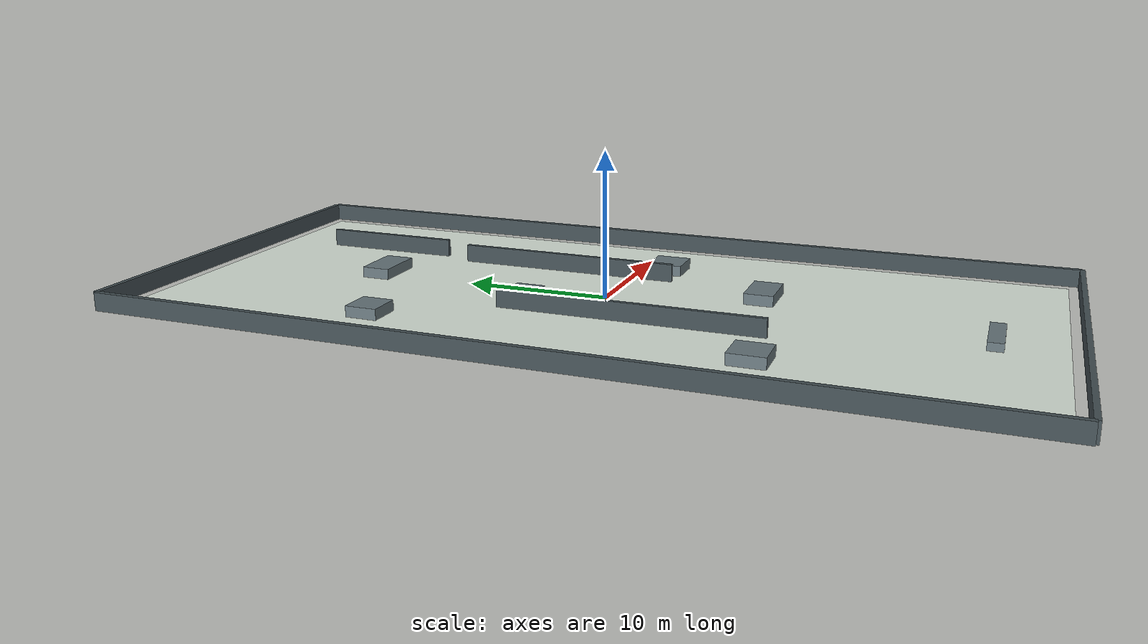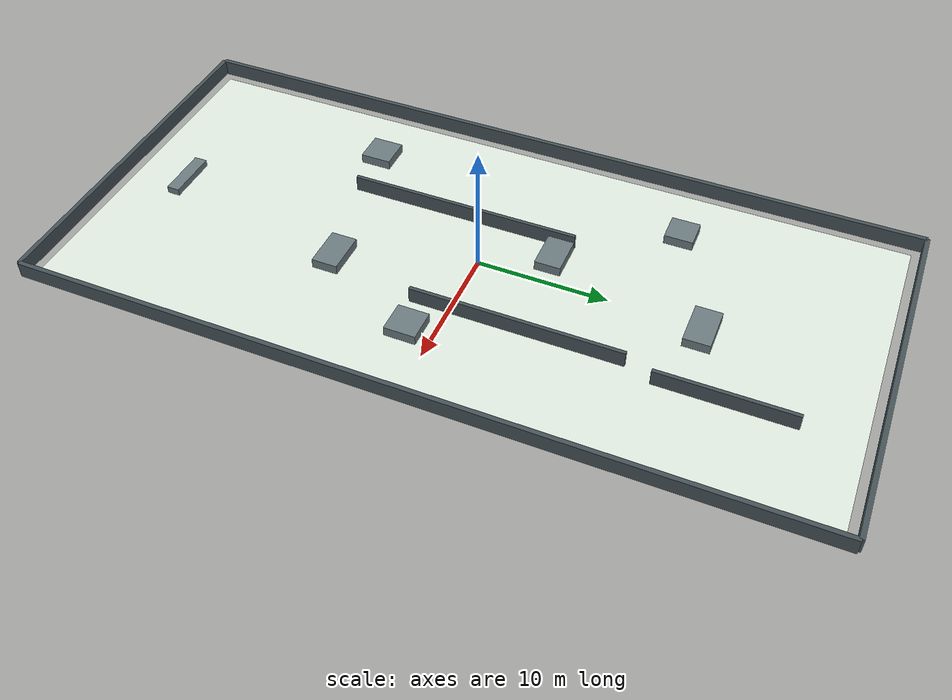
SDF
<?xml version="1.0" ?>
<sdf version="1.6">
  <world name="museum_gallery">
    <gravity>0 0 -9.8</gravity>
    <scene>
      <ambient>0.65 0.65 0.65 1</ambient>
      <background>0.78 0.84 0.88 1</background>
    </scene>
    <include>
      <uri>model://sun</uri>
    </include>
    <model name="museum_gallery_floor">
      <static>true</static>
      <pose>0.000 0.000 -0.025 0 0 0</pose>
      <link name="floor_link">
        <collision name="floor_collision">
          <geometry>
            <box><size>26.400 58.400 0.050</size></box>
          </geometry>
        </collision>
        <visual name="floor_visual">
          <geometry>
            <box><size>26.400 58.400 0.050</size></box>
          </geometry>
          <material><ambient>0.88 0.92 0.88 1</ambient><diffuse>0.88 0.92 0.88 1</diffuse></material>
        </visual>
      </link>
    </model>
    <model name="outer_north">
      <static>true</static>
      <pose>0.000 30.000 0.625 0 0 0</pose>
      <link name="outer_north_link">
        <collision name="outer_north_collision">
          <geometry>
            <box><size>28.000 0.350 1.250</size></box>
          </geometry>
        </collision>
        <visual name="outer_north_visual">
          <geometry>
            <box><size>28.000 0.350 1.250</size></box>
          </geometry>
          <material><ambient>0.27 0.32 0.34 1</ambient><diffuse>0.27 0.32 0.34 1</diffuse></material>
        </visual>
      </link>
    </model>
    <model name="outer_south">
      <static>true</static>
      <pose>0.000 -30.000 0.625 0 0 0</pose>
      <link name="outer_south_link">
        <collision name="outer_south_collision">
          <geometry>
            <box><size>28.000 0.350 1.250</size></box>
          </geometry>
        </collision>
        <visual name="outer_south_visual">
          <geometry>
            <box><size>28.000 0.350 1.250</size></box>
          </geometry>
          <material><ambient>0.27 0.32 0.34 1</ambient><diffuse>0.27 0.32 0.34 1</diffuse></material>
        </visual>
      </link>
    </model>
    <model name="outer_west">
      <static>true</static>
      <pose>-14.000 0.000 0.625 0 0 0</pose>
      <link name="outer_west_link">
        <collision name="outer_west_collision">
          <geometry>
            <box><size>0.350 60.000 1.250</size></box>
          </geometry>
        </collision>
        <visual name="outer_west_visual">
          <geometry>
            <box><size>0.350 60.000 1.250</size></box>
          </geometry>
          <material><ambient>0.27 0.32 0.34 1</ambient><diffuse>0.27 0.32 0.34 1</diffuse></material>
        </visual>
      </link>
    </model>
    <model name="outer_east">
      <static>true</static>
      <pose>14.000 0.000 0.625 0 0 0</pose>
      <link name="outer_east_link">
        <collision name="outer_east_collision">
          <geometry>
            <box><size>0.350 60.000 1.250</size></box>
          </geometry>
        </collision>
        <visual name="outer_east_visual">
          <geometry>
            <box><size>0.350 60.000 1.250</size></box>
          </geometry>
          <material><ambient>0.27 0.32 0.34 1</ambient><diffuse>0.27 0.32 0.34 1</diffuse></material>
        </visual>
      </link>
    </model>
    <model name="museum_partition_left">
      <static>true</static>
      <pose>-4.200 -3.000 0.625 0 0 0</pose>
      <link name="museum_partition_left_link">
        <collision name="museum_partition_left_collision">
          <geometry>
            <box><size>0.280 18.000 1.250</size></box>
          </geometry>
        </collision>
        <visual name="museum_partition_left_visual">
          <geometry>
            <box><size>0.280 18.000 1.250</size></box>
          </geometry>
          <material><ambient>0.27 0.32 0.34 1</ambient><diffuse>0.27 0.32 0.34 1</diffuse></material>
        </visual>
      </link>
    </model>
    <model name="museum_partition_right">
      <static>true</static>
      <pose>5.400 5.000 0.625 0 0 0</pose>
      <link name="museum_partition_right_link">
        <collision name="museum_partition_right_collision">
          <geometry>
            <box><size>0.280 16.000 1.250</size></box>
          </geometry>
        </collision>
        <visual name="museum_partition_right_visual">
          <geometry>
            <box><size>0.280 16.000 1.250</size></box>
          </geometry>
          <material><ambient>0.27 0.32 0.34 1</ambient><diffuse>0.27 0.32 0.34 1</diffuse></material>
        </visual>
      </link>
    </model>
    <model name="museum_vault_wall">
      <static>true</static>
      <pose>6.200 20.000 0.625 0 0 0</pose>
      <link name="museum_vault_wall_link">
        <collision name="museum_vault_wall_collision">
          <geometry>
            <box><size>0.280 10.000 1.250</size></box>
          </geometry>
        </collision>
        <visual name="museum_vault_wall_visual">
          <geometry>
            <box><size>0.280 10.000 1.250</size></box>
          </geometry>
          <material><ambient>0.27 0.32 0.34 1</ambient><diffuse>0.27 0.32 0.34 1</diffuse></material>
        </visual>
      </link>
    </model>
    <model name="museum_case_1">
      <static>true</static>
      <pose>-2.500 5.000 0.375 0 0 0</pose>
      <link name="museum_case_1_link">
        <collision name="museum_case_1_collision">
          <geometry>
            <box><size>3.000 2.000 0.750</size></box>
          </geometry>
        </collision>
        <visual name="museum_case_1_visual">
          <geometry>
            <box><size>3.000 2.000 0.750</size></box>
          </geometry>
          <material><ambient>0.42 0.48 0.50 1</ambient><diffuse>0.42 0.48 0.50 1</diffuse></material>
        </visual>
      </link>
    </model>
    <model name="museum_case_2">
      <static>true</static>
      <pose>3.500 -10.000 0.375 0 0 0</pose>
      <link name="museum_case_2_link">
        <collision name="museum_case_2_collision">
          <geometry>
            <box><size>3.200 2.000 0.750</size></box>
          </geometry>
        </collision>
        <visual name="museum_case_2_visual">
          <geometry>
            <box><size>3.200 2.000 0.750</size></box>
          </geometry>
          <material><ambient>0.42 0.48 0.50 1</ambient><diffuse>0.42 0.48 0.50 1</diffuse></material>
        </visual>
      </link>
    </model>
    <model name="museum_case_3">
      <static>true</static>
      <pose>-8.500 13.000 0.375 0 0 0</pose>
      <link name="museum_case_3_link">
        <collision name="museum_case_3_collision">
          <geometry>
            <box><size>2.200 2.200 0.750</size></box>
          </geometry>
        </collision>
        <visual name="museum_case_3_visual">
          <geometry>
            <box><size>2.200 2.200 0.750</size></box>
          </geometry>
          <material><ambient>0.42 0.48 0.50 1</ambient><diffuse>0.42 0.48 0.50 1</diffuse></material>
        </visual>
      </link>
    </model>
    <model name="museum_case_4">
      <static>true</static>
      <pose>0.500 17.000 0.375 0 0 0</pose>
      <link name="museum_case_4_link">
        <collision name="museum_case_4_collision">
          <geometry>
            <box><size>3.400 2.000 0.750</size></box>
          </geometry>
        </collision>
        <visual name="museum_case_4_visual">
          <geometry>
            <box><size>3.400 2.000 0.750</size></box>
          </geometry>
          <material><ambient>0.42 0.48 0.50 1</ambient><diffuse>0.42 0.48 0.50 1</diffuse></material>
        </visual>
      </link>
    </model>
    <model name="museum_case_5">
      <static>true</static>
      <pose>-8.500 -12.000 0.375 0 0 0</pose>
      <link name="museum_case_5_link">
        <collision name="museum_case_5_collision">
          <geometry>
            <box><size>2.400 2.400 0.750</size></box>
          </geometry>
        </collision>
        <visual name="museum_case_5_visual">
          <geometry>
            <box><size>2.400 2.400 0.750</size></box>
          </geometry>
          <material><ambient>0.42 0.48 0.50 1</ambient><diffuse>0.42 0.48 0.50 1</diffuse></material>
        </visual>
      </link>
    </model>
    <model name="museum_case_6">
      <static>true</static>
      <pose>8.000 -2.000 0.375 0 0 0</pose>
      <link name="museum_case_6_link">
        <collision name="museum_case_6_collision">
          <geometry>
            <box><size>2.400 2.400 0.750</size></box>
          </geometry>
        </collision>
        <visual name="museum_case_6_visual">
          <geometry>
            <box><size>2.400 2.400 0.750</size></box>
          </geometry>
          <material><ambient>0.42 0.48 0.50 1</ambient><diffuse>0.42 0.48 0.50 1</diffuse></material>
        </visual>
      </link>
    </model>
    <model name="museum_ticket_counter">
      <static>true</static>
      <pose>0.000 -25.000 0.275 0 0 0</pose>
      <link name="museum_ticket_counter_link">
        <collision name="museum_ticket_counter_collision">
          <geometry>
            <box><size>4.000 1.000 0.550</size></box>
          </geometry>
        </collision>
        <visual name="museum_ticket_counter_visual">
          <geometry>
            <box><size>4.000 1.000 0.550</size></box>
          </geometry>
          <material><ambient>0.42 0.48 0.50 1</ambient><diffuse>0.42 0.48 0.50 1</diffuse></material>
        </visual>
      </link>
    </model>
  </world>
</sdf>
